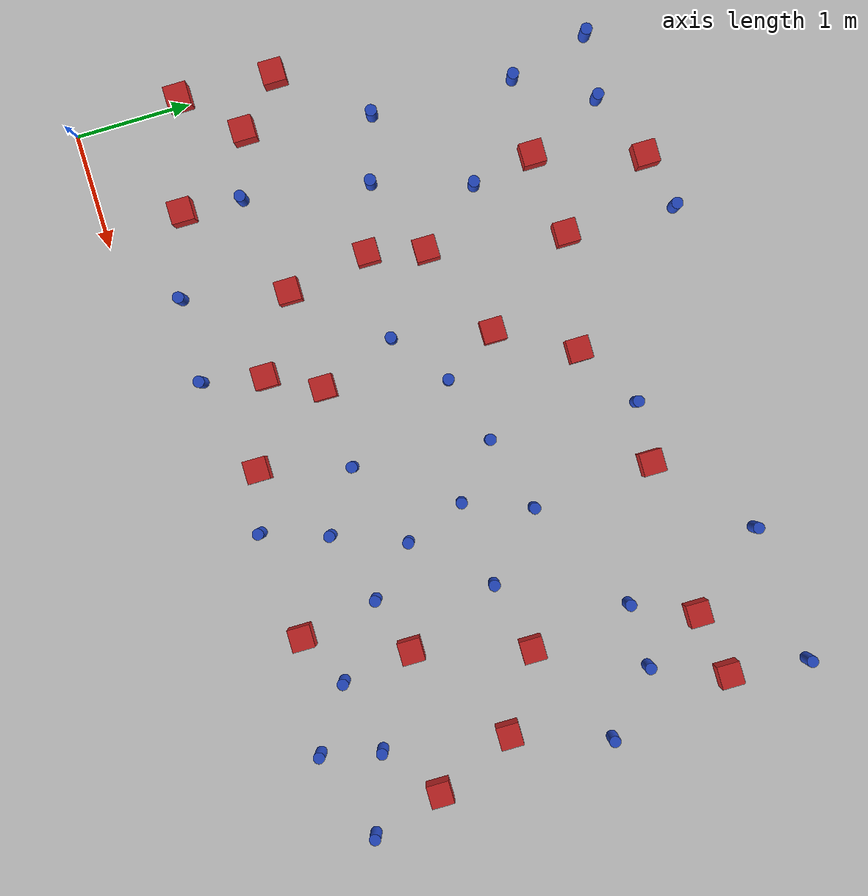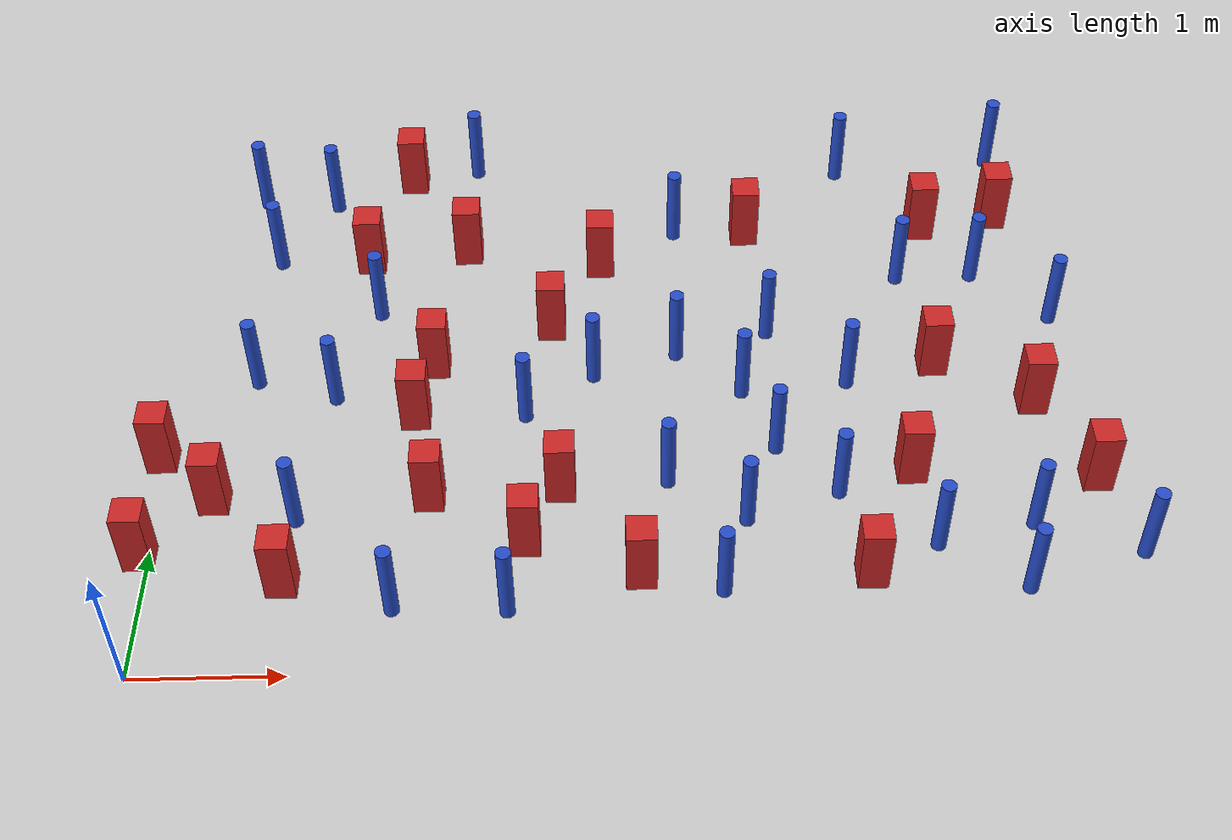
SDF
<sdf version="1.6">
 <world name="default">
  <model name="ground_plane">
   <static>1</static>
   <link name="link">
    <collision name="collision">
     <geometry><plane><normal>0 0 1</normal><size>100 100</size></plane></geometry>
     <surface><friction><ode><mu>100</mu><mu2>50</mu2></ode></friction></surface>
    </collision>
    <visual name="visual">
     <cast_shadows>0</cast_shadows>
     <geometry><plane><normal>0 0 1</normal><size>100 100</size></plane></geometry>
     <material>
      <ambient>1.0 1.0 1.0 1.0</ambient>
      <diffuse>0.8 0.8 0.8 1.0</diffuse>
      <specular>0.01 0.01 0.01 1.000000</specular>
     </material>
    </visual>
   </link>
  </model>
  <model name="pole_obstacle5">
   <static>true</static>
   <pose>0.382674475622 4.43594093725 2.88873142074e-08 -9.90536689683e-09 4.60219948993e-07 -1.20965994957e-07</pose>
   <link name="link">
    <pose>0 0 0.3 0 -0 0</pose>
    <inertial>
     <mass>1</mass>
     <inertia><ixx>0.145833</ixx><ixy>0</ixy><ixz>0</ixz><iyy>0.145833</iyy><iyz>0</iyz><izz>0.125</izz></inertia>
    </inertial>
    <collision name="collision">
     <geometry><cylinder><radius>0.05</radius><length>.6</length></cylinder></geometry>
    </collision>
    <visual name="visual">
     <geometry><cylinder><radius>0.05</radius><length>.6</length></cylinder></geometry>
     <material>
      <script><name>Gazebo/Blue</name><uri>file://media/materials/scripts/gazebo.material</uri></script>
     </material>
    </visual>
   </link>
  </model>
  <model name="square_post_obstacle14">
   <static>true</static>
   <pose>2.61013132298 2.97255172156 8.22691968438e-08 7.2212513382e-06 -7.54495500217e-07 2.29674213826e-05</pose>
   <link name="link">
    <pose>0 0 0.25 0 -0 0</pose>
    <inertial>
     <mass>100</mass>
     <inertia>
      <ixx>0.166667</ixx>
      <ixy>0</ixy>
      <ixz>0</ixz>
      <iyy>0.166667</iyy>
      <iyz>0</iyz>
      <izz>0.166667</izz>
     </inertia>
    </inertial>
    <collision name="collision"><geometry><box><size>.2 .2 .5</size></box></geometry></collision>
    <visual name="visual">
     <geometry><box><size>.2 .2 .5</size></box></geometry>
     <material>
      <script><name>Gazebo/Red</name><uri>file://media/materials/scripts/gazebo.material</uri></script>
     </material>
    </visual>
   </link>
  </model>
  <model name="square_post_obstacle18">
   <static>true</static>
   <pose>5.32142066474 2.54348663365 8.22691968438e-08 7.2212513382e-06 -7.54495500217e-07 2.29674213826e-05</pose>
   <link name="link">
    <pose>0 0 0.25 0 -0 0</pose>
    <inertial>
     <mass>100</mass>
     <inertia>
      <ixx>0.166667</ixx>
      <ixy>0</ixy>
      <ixz>0</ixz>
      <iyy>0.166667</iyy>
      <iyz>0</iyz>
      <izz>0.166667</izz>
     </inertia>
    </inertial>
    <collision name="collision"><geometry><box><size>.2 .2 .5</size></box></geometry></collision>
    <visual name="visual">
     <geometry><box><size>.2 .2 .5</size></box></geometry>
     <material>
      <script><name>Gazebo/Red</name><uri>file://media/materials/scripts/gazebo.material</uri></script>
     </material>
    </visual>
   </link>
  </model>
  <model name="pole_obstacle12">
   <static>true</static>
   <pose>6.0619317782 4.78889199146 2.88873142074e-08 -9.90536690842e-09 4.60219948965e-07 -1.20965994976e-07</pose>
   <link name="link">
    <pose>0 0 0.3 0 -0 0</pose>
    <inertial>
     <mass>1</mass>
     <inertia><ixx>0.145833</ixx><ixy>0</ixy><ixz>0</ixz><iyy>0.145833</iyy><iyz>0</iyz><izz>0.125</izz></inertia>
    </inertial>
    <collision name="collision">
     <geometry><cylinder><radius>0.05</radius><length>.6</length></cylinder></geometry>
    </collision>
    <visual name="visual">
     <geometry><cylinder><radius>0.05</radius><length>.6</length></cylinder></geometry>
     <material>
      <script><name>Gazebo/Blue</name><uri>file://media/materials/scripts/gazebo.material</uri></script>
     </material>
    </visual>
   </link>
  </model>
  <model name="square_post_obstacle27">
   <static>true</static>
   <pose>-0.0255257108904 1.77597224821 8.22691968438e-08 7.2212513382e-06 -7.54495500217e-07 2.29674213826e-05</pose>
   <link name="link">
    <pose>0 0 0.25 0 -0 0</pose>
    <inertial>
     <mass>100</mass>
     <inertia>
      <ixx>0.166667</ixx>
      <ixy>0</ixy>
      <ixz>0</ixz>
      <iyy>0.166667</iyy>
      <iyz>0</iyz>
      <izz>0.166667</izz>
     </inertia>
    </inertial>
    <collision name="collision"><geometry><box><size>.2 .2 .5</size></box></geometry></collision>
    <visual name="visual">
     <geometry><box><size>.2 .2 .5</size></box></geometry>
     <material>
      <script><name>Gazebo/Red</name><uri>file://media/materials/scripts/gazebo.material</uri></script>
     </material>
    </visual>
   </link>
  </model>
  <model name="pole_obstacle19">
   <static>true</static>
   <pose>5.17856146694 3.44423831095 2.88873142074e-08 -9.90536690245e-09 4.6021994898e-07 -1.20965994966e-07</pose>
   <link name="link">
    <pose>0 0 0.3 0 -0 0</pose>
    <inertial>
     <mass>1</mass>
     <inertia><ixx>0.145833</ixx><ixy>0</ixy><ixz>0</ixz><iyy>0.145833</iyy><iyz>0</iyz><izz>0.125</izz></inertia>
    </inertial>
    <collision name="collision">
     <geometry><cylinder><radius>0.05</radius><length>.6</length></cylinder></geometry>
    </collision>
    <visual name="visual">
     <geometry><cylinder><radius>0.05</radius><length>.6</length></cylinder></geometry>
     <material>
      <script><name>Gazebo/Blue</name><uri>file://media/materials/scripts/gazebo.material</uri></script>
     </material>
    </visual>
   </link>
  </model>
  <model name="square_post_obstacle29">
   <static>true</static>
   <pose>5.96964762389 2.1500642033 8.22691968438e-08 7.2212513382e-06 -7.54495500217e-07 2.29674213826e-05</pose>
   <link name="link">
    <pose>0 0 0.25 0 -0 0</pose>
    <inertial>
     <mass>100</mass>
     <inertia>
      <ixx>0.166667</ixx>
      <ixy>0</ixy>
      <ixz>0</ixz>
      <iyy>0.166667</iyy>
      <iyz>0</iyz>
      <izz>0.166667</izz>
     </inertia>
    </inertial>
    <collision name="collision"><geometry><box><size>.2 .2 .5</size></box></geometry></collision>
    <visual name="visual">
     <geometry><box><size>.2 .2 .5</size></box></geometry>
     <material>
      <script><name>Gazebo/Red</name><uri>file://media/materials/scripts/gazebo.material</uri></script>
     </material>
    </visual>
   </link>
  </model>
  <model name="pole_obstacle24">
   <static>true</static>
   <pose>5.68615089917 0.547979014255 2.88873142074e-08 -9.90536689326e-09 4.60219949001e-07 -1.20965994954e-07</pose>
   <link name="link">
    <pose>0 0 0.3 0 -0 0</pose>
    <inertial>
     <mass>1</mass>
     <inertia><ixx>0.145833</ixx><ixy>0</ixy><ixz>0</ixz><iyy>0.145833</iyy><iyz>0</iyz><izz>0.125</izz></inertia>
    </inertial>
    <collision name="collision">
     <geometry><cylinder><radius>0.05</radius><length>.6</length></cylinder></geometry>
    </collision>
    <visual name="visual">
     <geometry><cylinder><radius>0.05</radius><length>.6</length></cylinder></geometry>
     <material>
      <script><name>Gazebo/Blue</name><uri>file://media/materials/scripts/gazebo.material</uri></script>
     </material>
    </visual>
   </link>
  </model>
  <model name="pole_obstacle27">
   <static>true</static>
   <pose>3.53494748664 3.98788788969 2.88873142074e-08 -9.90536690801e-09 4.60219948966e-07 -1.20965994976e-07</pose>
   <link name="link">
    <pose>0 0 0.3 0 -0 0</pose>
    <inertial>
     <mass>1</mass>
     <inertia><ixx>0.145833</ixx><ixy>0</ixy><ixz>0</ixz><iyy>0.145833</iyy><iyz>0</iyz><izz>0.125</izz></inertia>
    </inertial>
    <collision name="collision">
     <geometry><cylinder><radius>0.05</radius><length>.6</length></cylinder></geometry>
    </collision>
    <visual name="visual">
     <geometry><cylinder><radius>0.05</radius><length>.6</length></cylinder></geometry>
     <material>
      <script><name>Gazebo/Blue</name><uri>file://media/materials/scripts/gazebo.material</uri></script>
     </material>
    </visual>
   </link>
  </model>
  <model name="pole_obstacle30">
   <static>true</static>
   <pose>3.39756481299 1.49578005829 2.88873142074e-08 -9.90536689395e-09 4.60219949e-07 -1.20965994953e-07</pose>
   <link name="link">
    <pose>0 0 0.3 0 -0 0</pose>
    <inertial>
     <mass>1</mass>
     <inertia><ixx>0.145833</ixx><ixy>0</ixy><ixz>0</ixz><iyy>0.145833</iyy><iyz>0</iyz><izz>0.125</izz></inertia>
    </inertial>
    <collision name="collision">
     <geometry><cylinder><radius>0.05</radius><length>.6</length></cylinder></geometry>
    </collision>
    <visual name="visual">
     <geometry><cylinder><radius>0.05</radius><length>.6</length></cylinder></geometry>
     <material>
      <script><name>Gazebo/Blue</name><uri>file://media/materials/scripts/gazebo.material</uri></script>
     </material>
    </visual>
   </link>
  </model>
  <model name="pole_obstacle34">
   <static>true</static>
   <pose>1.60834827401 0.483331909976 2.88873142074e-08 -9.90536689788e-09 4.6021994899e-07 -1.2096599496e-07</pose>
   <link name="link">
    <pose>0 0 0.3 0 -0 0</pose>
    <inertial>
     <mass>1</mass>
     <inertia><ixx>0.145833</ixx><ixy>0</ixy><ixz>0</ixz><iyy>0.145833</iyy><iyz>0</iyz><izz>0.125</izz></inertia>
    </inertial>
    <collision name="collision">
     <geometry><cylinder><radius>0.05</radius><length>.6</length></cylinder></geometry>
    </collision>
    <visual name="visual">
     <geometry><cylinder><radius>0.05</radius><length>.6</length></cylinder></geometry>
     <material>
      <script><name>Gazebo/Blue</name><uri>file://media/materials/scripts/gazebo.material</uri></script>
     </material>
    </visual>
   </link>
  </model>
  <model name="square_post_obstacle46">
   <static>true</static>
   <pose>0.896852950103 0.699827318143 8.22691968438e-08 7.2212513382e-06 -7.54495500217e-07 2.29674213826e-05</pose>
   <link name="link">
    <pose>0 0 0.25 0 -0 0</pose>
    <inertial>
     <mass>100</mass>
     <inertia>
      <ixx>0.166667</ixx>
      <ixy>0</ixy>
      <ixz>0</ixz>
      <iyy>0.166667</iyy>
      <iyz>0</iyz>
      <izz>0.166667</izz>
     </inertia>
    </inertial>
    <collision name="collision"><geometry><box><size>.2 .2 .5</size></box></geometry></collision>
    <visual name="visual">
     <geometry><box><size>.2 .2 .5</size></box></geometry>
     <material>
      <script><name>Gazebo/Red</name><uri>file://media/materials/scripts/gazebo.material</uri></script>
     </material>
    </visual>
   </link>
  </model>
  <model name="pole_obstacle46">
   <static>true</static>
   <pose>2.90901373411 2.49089740386 2.88873142074e-08 -9.90536690232e-09 4.6021994898e-07 -1.20965994968e-07</pose>
   <link name="link">
    <pose>0 0 0.3 0 -0 0</pose>
    <inertial>
     <mass>1</mass>
     <inertia><ixx>0.145833</ixx><ixy>0</ixy><ixz>0</ixz><iyy>0.145833</iyy><iyz>0</iyz><izz>0.125</izz></inertia>
    </inertial>
    <collision name="collision">
     <geometry><cylinder><radius>0.05</radius><length>.6</length></cylinder></geometry>
    </collision>
    <visual name="visual">
     <geometry><cylinder><radius>0.05</radius><length>.6</length></cylinder></geometry>
     <material>
      <script><name>Gazebo/Blue</name><uri>file://media/materials/scripts/gazebo.material</uri></script>
     </material>
    </visual>
   </link>
  </model>
  <model name="square_post_obstacle52">
   <static>true</static>
   <pose>0.37356149189 1.39586468227 8.22691968438e-08 7.2212513382e-06 -7.54495500217e-07 2.29674213826e-05</pose>
   <link name="link">
    <pose>0 0 0.25 0 -0 0</pose>
    <inertial>
     <mass>100</mass>
     <inertia>
      <ixx>0.166667</ixx>
      <ixy>0</ixy>
      <ixz>0</ixz>
      <iyy>0.166667</iyy>
      <iyz>0</iyz>
      <izz>0.166667</izz>
     </inertia>
    </inertial>
    <collision name="collision"><geometry><box><size>.2 .2 .5</size></box></geometry></collision>
    <visual name="visual">
     <geometry><box><size>.2 .2 .5</size></box></geometry>
     <material>
      <script><name>Gazebo/Red</name><uri>file://media/materials/scripts/gazebo.material</uri></script>
     </material>
    </visual>
   </link>
  </model>
  <model name="pole_obstacle51">
   <static>true</static>
   <pose>0.538467416489 2.4917963803 2.88873142074e-08 -9.90536689505e-09 4.60219948997e-07 -1.20965994956e-07</pose>
   <link name="link">
    <pose>0 0 0.3 0 -0 0</pose>
    <inertial>
     <mass>1</mass>
     <inertia><ixx>0.145833</ixx><ixy>0</ixy><ixz>0</ixz><iyy>0.145833</iyy><iyz>0</iyz><izz>0.125</izz></inertia>
    </inertial>
    <collision name="collision">
     <geometry><cylinder><radius>0.05</radius><length>.6</length></cylinder></geometry>
    </collision>
    <visual name="visual">
     <geometry><cylinder><radius>0.05</radius><length>.6</length></cylinder></geometry>
     <material>
      <script><name>Gazebo/Blue</name><uri>file://media/materials/scripts/gazebo.material</uri></script>
     </material>
    </visual>
   </link>
  </model>
  <model name="square_post_obstacle60">
   <static>true</static>
   <pose>-0.0507237619743 0.941980563295 8.22691968438e-08 7.2212513382e-06 -7.54495500217e-07 2.29674213826e-05</pose>
   <link name="link">
    <pose>0 0 0.25 0 -0 0</pose>
    <inertial>
     <mass>100</mass>
     <inertia>
      <ixx>0.166667</ixx>
      <ixy>0</ixy>
      <ixz>0</ixz>
      <iyy>0.166667</iyy>
      <iyz>0</iyz>
      <izz>0.166667</izz>
     </inertia>
    </inertial>
    <collision name="collision"><geometry><box><size>.2 .2 .5</size></box></geometry></collision>
    <visual name="visual">
     <geometry><box><size>.2 .2 .5</size></box></geometry>
     <material>
      <script><name>Gazebo/Red</name><uri>file://media/materials/scripts/gazebo.material</uri></script>
     </material>
    </visual>
   </link>
  </model>
  <model name="square_post_obstacle62">
   <static>true</static>
   <pose>4.06875309384 3.96466266357 8.22691968438e-08 7.2212513382e-06 -7.54495500217e-07 2.29674213826e-05</pose>
   <link name="link">
    <pose>0 0 0.25 0 -0 0</pose>
    <inertial>
     <mass>100</mass>
     <inertia>
      <ixx>0.166667</ixx>
      <ixy>0</ixy>
      <ixz>0</ixz>
      <iyy>0.166667</iyy>
      <iyz>0</iyz>
      <izz>0.166667</izz>
     </inertia>
    </inertial>
    <collision name="collision"><geometry><box><size>.2 .2 .5</size></box></geometry></collision>
    <visual name="visual">
     <geometry><box><size>.2 .2 .5</size></box></geometry>
     <material>
      <script><name>Gazebo/Red</name><uri>file://media/materials/scripts/gazebo.material</uri></script>
     </material>
    </visual>
   </link>
  </model>
  <model name="square_post_obstacle71">
   <static>true</static>
   <pose>1.98013108426 3.80431975453 8.22691968438e-08 7.2212513382e-06 -7.54495500217e-07 2.29674213826e-05</pose>
   <link name="link">
    <pose>0 0 0.25 0 -0 0</pose>
    <inertial>
     <mass>100</mass>
     <inertia>
      <ixx>0.166667</ixx>
      <ixy>0</ixy>
      <ixz>0</ixz>
      <iyy>0.166667</iyy>
      <iyz>0</iyz>
      <izz>0.166667</izz>
     </inertia>
    </inertial>
    <collision name="collision"><geometry><box><size>.2 .2 .5</size></box></geometry></collision>
    <visual name="visual">
     <geometry><box><size>.2 .2 .5</size></box></geometry>
     <material>
      <script><name>Gazebo/Red</name><uri>file://media/materials/scripts/gazebo.material</uri></script>
     </material>
    </visual>
   </link>
  </model>
  <model name="pole_obstacle73">
   <static>true</static>
   <pose>3.72306893684 0.576632141042 2.88873142074e-08 -9.90536689285e-09 4.60219949002e-07 -1.20965994953e-07</pose>
   <link name="link">
    <pose>0 0 0.3 0 -0 0</pose>
    <inertial>
     <mass>1</mass>
     <inertia><ixx>0.145833</ixx><ixy>0</ixy><ixz>0</ixz><iyy>0.145833</iyy><iyz>0</iyz><izz>0.125</izz></inertia>
    </inertial>
    <collision name="collision">
     <geometry><cylinder><radius>0.05</radius><length>.6</length></cylinder></geometry>
    </collision>
    <visual name="visual">
     <geometry><cylinder><radius>0.05</radius><length>.6</length></cylinder></geometry>
     <material>
      <script><name>Gazebo/Blue</name><uri>file://media/materials/scripts/gazebo.material</uri></script>
     </material>
    </visual>
   </link>
  </model>
  <model name="pole_obstacle79">
   <static>true</static>
   <pose>5.74018589394 3.45832633295 2.88873142074e-08 -9.90536690245e-09 4.6021994898e-07 -1.20965994966e-07</pose>
   <link name="link">
    <pose>0 0 0.3 0 -0 0</pose>
    <inertial>
     <mass>1</mass>
     <inertia><ixx>0.145833</ixx><ixy>0</ixy><ixz>0</ixz><iyy>0.145833</iyy><iyz>0</iyz><izz>0.125</izz></inertia>
    </inertial>
    <collision name="collision">
     <geometry><cylinder><radius>0.05</radius><length>.6</length></cylinder></geometry>
    </collision>
    <visual name="visual">
     <geometry><cylinder><radius>0.05</radius><length>.6</length></cylinder></geometry>
     <material>
      <script><name>Gazebo/Blue</name><uri>file://media/materials/scripts/gazebo.material</uri></script>
     </material>
    </visual>
   </link>
  </model>
  <model name="square_post_obstacle87">
   <static>true</static>
   <pose>5.04496275468 1.54257929177 8.22691968438e-08 7.2212513382e-06 -7.54495500217e-07 2.29674213826e-05</pose>
   <link name="link">
    <pose>0 0 0.25 0 -0 0</pose>
    <inertial>
     <mass>100</mass>
     <inertia>
      <ixx>0.166667</ixx>
      <ixy>0</ixy>
      <ixz>0</ixz>
      <iyy>0.166667</iyy>
      <iyz>0</iyz>
      <izz>0.166667</izz>
     </inertia>
    </inertial>
    <collision name="collision"><geometry><box><size>.2 .2 .5</size></box></geometry></collision>
    <visual name="visual">
     <geometry><box><size>.2 .2 .5</size></box></geometry>
     <material>
      <script><name>Gazebo/Red</name><uri>file://media/materials/scripts/gazebo.material</uri></script>
     </material>
    </visual>
   </link>
  </model>
  <model name="square_post_obstacle91">
   <static>true</static>
   <pose>3.19738153457 0.706337699116 8.22691968438e-08 7.2212513382e-06 -7.54495500217e-07 2.29674213826e-05</pose>
   <link name="link">
    <pose>0 0 0.25 0 -0 0</pose>
    <inertial>
     <mass>100</mass>
     <inertia>
      <ixx>0.166667</ixx>
      <ixy>0</ixy>
      <ixz>0</ixz>
      <iyy>0.166667</iyy>
      <iyz>0</iyz>
      <izz>0.166667</izz>
     </inertia>
    </inertial>
    <collision name="collision"><geometry><box><size>.2 .2 .5</size></box></geometry></collision>
    <visual name="visual">
     <geometry><box><size>.2 .2 .5</size></box></geometry>
     <material>
      <script><name>Gazebo/Red</name><uri>file://media/materials/scripts/gazebo.material</uri></script>
     </material>
    </visual>
   </link>
  </model>
  <model name="square_post_obstacle94">
   <static>true</static>
   <pose>1.25440199853 3.71421109143 8.22691968438e-08 7.2212513382e-06 -7.54495500217e-07 2.29674213826e-05</pose>
   <link name="link">
    <pose>0 0 0.25 0 -0 0</pose>
    <inertial>
     <mass>100</mass>
     <inertia>
      <ixx>0.166667</ixx>
      <ixy>0</ixy>
      <ixz>0</ixz>
      <iyy>0.166667</iyy>
      <iyz>0</iyz>
      <izz>0.166667</izz>
     </inertia>
    </inertial>
    <collision name="collision"><geometry><box><size>.2 .2 .5</size></box></geometry></collision>
    <visual name="visual">
     <geometry><box><size>.2 .2 .5</size></box></geometry>
     <material>
      <script><name>Gazebo/Red</name><uri>file://media/materials/scripts/gazebo.material</uri></script>
     </material>
    </visual>
   </link>
  </model>
  <model name="pole_obstacle107">
   <static>true</static>
   <pose>1.35894943077 3.16353920913 2.88873142074e-08 -9.90536689791e-09 4.6021994899e-07 -1.20965994959e-07</pose>
   <link name="link">
    <pose>0 0 0.3 0 -0 0</pose>
    <inertial>
     <mass>1</mass>
     <inertia><ixx>0.145833</ixx><ixy>0</ixy><ixz>0</ixz><iyy>0.145833</iyy><iyz>0</iyz><izz>0.125</izz></inertia>
    </inertial>
    <collision name="collision">
     <geometry><cylinder><radius>0.05</radius><length>.6</length></cylinder></geometry>
    </collision>
    <visual name="visual">
     <geometry><cylinder><radius>0.05</radius><length>.6</length></cylinder></geometry>
     <material>
      <script><name>Gazebo/Blue</name><uri>file://media/materials/scripts/gazebo.material</uri></script>
     </material>
    </visual>
   </link>
  </model>
  <model name="square_post_obstacle100">
   <static>true</static>
   <pose>5.41986902795 3.98958610892 8.22691968438e-08 7.2212513382e-06 -7.54495500217e-07 2.29674213826e-05</pose>
   <link name="link">
    <pose>0 0 0.25 0 -0 0</pose>
    <inertial>
     <mass>100</mass>
     <inertia>
      <ixx>0.166667</ixx>
      <ixy>0</ixy>
      <ixz>0</ixz>
      <iyy>0.166667</iyy>
      <iyz>0</iyz>
      <izz>0.166667</izz>
     </inertia>
    </inertial>
    <collision name="collision"><geometry><box><size>.2 .2 .5</size></box></geometry></collision>
    <visual name="visual">
     <geometry><box><size>.2 .2 .5</size></box></geometry>
     <material>
      <script><name>Gazebo/Red</name><uri>file://media/materials/scripts/gazebo.material</uri></script>
     </material>
    </visual>
   </link>
  </model>
  <model name="pole_obstacle115">
   <static>true</static>
   <pose>0.927162185354 1.22304639306 2.88873142074e-08 -9.90536689855e-09 4.60219948989e-07 -1.20965994962e-07</pose>
   <link name="link">
    <pose>0 0 0.3 0 -0 0</pose>
    <inertial>
     <mass>1</mass>
     <inertia><ixx>0.145833</ixx><ixy>0</ixy><ixz>0</ixz><iyy>0.145833</iyy><iyz>0</iyz><izz>0.125</izz></inertia>
    </inertial>
    <collision name="collision">
     <geometry><cylinder><radius>0.05</radius><length>.6</length></cylinder></geometry>
    </collision>
    <visual name="visual">
     <geometry><cylinder><radius>0.05</radius><length>.6</length></cylinder></geometry>
     <material>
      <script><name>Gazebo/Blue</name><uri>file://media/materials/scripts/gazebo.material</uri></script>
     </material>
    </visual>
   </link>
  </model>
  <model name="pole_obstacle118">
   <static>true</static>
   <pose>1.1014590591 2.32056846947 2.88873142074e-08 -9.90536689791e-09 4.6021994899e-07 -1.20965994959e-07</pose>
   <link name="link">
    <pose>0 0 0.3 0 -0 0</pose>
    <inertial>
     <mass>1</mass>
     <inertia><ixx>0.145833</ixx><ixy>0</ixy><ixz>0</ixz><iyy>0.145833</iyy><iyz>0</iyz><izz>0.125</izz></inertia>
    </inertial>
    <collision name="collision">
     <geometry><cylinder><radius>0.05</radius><length>.6</length></cylinder></geometry>
    </collision>
    <visual name="visual">
     <geometry><cylinder><radius>0.05</radius><length>.6</length></cylinder></geometry>
     <material>
      <script><name>Gazebo/Blue</name><uri>file://media/materials/scripts/gazebo.material</uri></script>
     </material>
    </visual>
   </link>
  </model>
  <model name="pole_obstacle120">
   <static>true</static>
   <pose>4.54256286126 1.37131917725 2.88873142074e-08 -9.90536689445e-09 4.60219948999e-07 -1.20965994956e-07</pose>
   <link name="link">
    <pose>0 0 0.3 0 -0 0</pose>
    <inertial>
     <mass>1</mass>
     <inertia><ixx>0.145833</ixx><ixy>0</ixy><ixz>0</ixz><iyy>0.145833</iyy><iyz>0</iyz><izz>0.125</izz></inertia>
    </inertial>
    <collision name="collision">
     <geometry><cylinder><radius>0.05</radius><length>.6</length></cylinder></geometry>
    </collision>
    <visual name="visual">
     <geometry><cylinder><radius>0.05</radius><length>.6</length></cylinder></geometry>
     <material>
      <script><name>Gazebo/Blue</name><uri>file://media/materials/scripts/gazebo.material</uri></script>
     </material>
    </visual>
   </link>
  </model>
  <model name="pole_obstacle123">
   <static>true</static>
   <pose>4.14812218759 1.77840719696 2.88873142074e-08 -9.90536689445e-09 4.60219948999e-07 -1.20965994956e-07</pose>
   <link name="link">
    <pose>0 0 0.3 0 -0 0</pose>
    <inertial>
     <mass>1</mass>
     <inertia><ixx>0.145833</ixx><ixy>0</ixy><ixz>0</ixz><iyy>0.145833</iyy><iyz>0</iyz><izz>0.125</izz></inertia>
    </inertial>
    <collision name="collision">
     <geometry><cylinder><radius>0.05</radius><length>.6</length></cylinder></geometry>
    </collision>
    <visual name="visual">
     <geometry><cylinder><radius>0.05</radius><length>.6</length></cylinder></geometry>
     <material>
      <script><name>Gazebo/Blue</name><uri>file://media/materials/scripts/gazebo.material</uri></script>
     </material>
    </visual>
   </link>
  </model>
  <model name="pole_obstacle124">
   <static>true</static>
   <pose>2.01302240176 4.76584626278 2.88873142074e-08 -9.90536689932e-09 4.60219948987e-07 -1.20965994962e-07</pose>
   <link name="link">
    <pose>0 0 0.3 0 -0 0</pose>
    <inertial>
     <mass>1</mass>
     <inertia><ixx>0.145833</ixx><ixy>0</ixy><ixz>0</ixz><iyy>0.145833</iyy><iyz>0</iyz><izz>0.125</izz></inertia>
    </inertial>
    <collision name="collision">
     <geometry><cylinder><radius>0.05</radius><length>.6</length></cylinder></geometry>
    </collision>
    <visual name="visual">
     <geometry><cylinder><radius>0.05</radius><length>.6</length></cylinder></geometry>
     <material>
      <script><name>Gazebo/Blue</name><uri>file://media/materials/scripts/gazebo.material</uri></script>
     </material>
    </visual>
   </link>
  </model>
  <model name="pole_obstacle125">
   <static>true</static>
   <pose>6.24891173623 2.99461866241 2.88873142074e-08 -9.90536690245e-09 4.6021994898e-07 -1.20965994966e-07</pose>
   <link name="link">
    <pose>0 0 0.3 0 -0 0</pose>
    <inertial>
     <mass>1</mass>
     <inertia><ixx>0.145833</ixx><ixy>0</ixy><ixz>0</ixz><iyy>0.145833</iyy><iyz>0</iyz><izz>0.125</izz></inertia>
    </inertial>
    <collision name="collision">
     <geometry><cylinder><radius>0.05</radius><length>.6</length></cylinder></geometry>
    </collision>
    <visual name="visual">
     <geometry><cylinder><radius>0.05</radius><length>.6</length></cylinder></geometry>
     <material>
      <script><name>Gazebo/Blue</name><uri>file://media/materials/scripts/gazebo.material</uri></script>
     </material>
    </visual>
   </link>
  </model>
  <model name="pole_obstacle136">
   <static>true</static>
   <pose>4.84925087403 4.66553515354 2.88873142074e-08 -9.90536690842e-09 4.60219948965e-07 -1.20965994976e-07</pose>
   <link name="link">
    <pose>0 0 0.3 0 -0 0</pose>
    <inertial>
     <mass>1</mass>
     <inertia><ixx>0.145833</ixx><ixy>0</ixy><ixz>0</ixz><iyy>0.145833</iyy><iyz>0</iyz><izz>0.125</izz></inertia>
    </inertial>
    <collision name="collision">
     <geometry><cylinder><radius>0.05</radius><length>.6</length></cylinder></geometry>
    </collision>
    <visual name="visual">
     <geometry><cylinder><radius>0.05</radius><length>.6</length></cylinder></geometry>
     <material>
      <script><name>Gazebo/Blue</name><uri>file://media/materials/scripts/gazebo.material</uri></script>
     </material>
    </visual>
   </link>
  </model>
  <model name="pole_obstacle139">
   <static>true</static>
   <pose>3.94839999957 2.3071250398 2.88873142074e-08 -9.90536690232e-09 4.6021994898e-07 -1.20965994968e-07</pose>
   <link name="link">
    <pose>0 0 0.3 0 -0 0</pose>
    <inertial>
     <mass>1</mass>
     <inertia><ixx>0.145833</ixx><ixy>0</ixy><ixz>0</ixz><iyy>0.145833</iyy><iyz>0</iyz><izz>0.125</izz></inertia>
    </inertial>
    <collision name="collision">
     <geometry><cylinder><radius>0.05</radius><length>.6</length></cylinder></geometry>
    </collision>
    <visual name="visual">
     <geometry><cylinder><radius>0.05</radius><length>.6</length></cylinder></geometry>
     <material>
      <script><name>Gazebo/Blue</name><uri>file://media/materials/scripts/gazebo.material</uri></script>
     </material>
    </visual>
   </link>
  </model>
  <model name="pole_obstacle141">
   <static>true</static>
   <pose>3.90942512859 1.15092189156 2.88873142074e-08 -9.90536689395e-09 4.60219949e-07 -1.20965994953e-07</pose>
   <link name="link">
    <pose>0 0 0.3 0 -0 0</pose>
    <inertial>
     <mass>1</mass>
     <inertia><ixx>0.145833</ixx><ixy>0</ixy><ixz>0</ixz><iyy>0.145833</iyy><iyz>0</iyz><izz>0.125</izz></inertia>
    </inertial>
    <collision name="collision">
     <geometry><cylinder><radius>0.05</radius><length>.6</length></cylinder></geometry>
    </collision>
    <visual name="visual">
     <geometry><cylinder><radius>0.05</radius><length>.6</length></cylinder></geometry>
     <material>
      <script><name>Gazebo/Blue</name><uri>file://media/materials/scripts/gazebo.material</uri></script>
     </material>
    </visual>
   </link>
  </model>
  <model name="square_post_obstacle126">
   <static>true</static>
   <pose>2.67675898367 1.44273884122 8.22691968438e-08 7.2212513382e-06 -7.54495500217e-07 2.29674213826e-05</pose>
   <link name="link">
    <pose>0 0 0.25 0 -0 0</pose>
    <inertial>
     <mass>100</mass>
     <inertia>
      <ixx>0.166667</ixx>
      <ixy>0</ixy>
      <ixz>0</ixz>
      <iyy>0.166667</iyy>
      <iyz>0</iyz>
      <izz>0.166667</izz>
     </inertia>
    </inertial>
    <collision name="collision"><geometry><box><size>.2 .2 .5</size></box></geometry></collision>
    <visual name="visual">
     <geometry><box><size>.2 .2 .5</size></box></geometry>
     <material>
      <script><name>Gazebo/Red</name><uri>file://media/materials/scripts/gazebo.material</uri></script>
     </material>
    </visual>
   </link>
  </model>
  <model name="square_post_obstacle129">
   <static>true</static>
   <pose>2.97025087968 3.63249098519 8.22691968438e-08 7.2212513382e-06 -7.54495500217e-07 2.29674213826e-05</pose>
   <link name="link">
    <pose>0 0 0.25 0 -0 0</pose>
    <inertial>
     <mass>100</mass>
     <inertia>
      <ixx>0.166667</ixx>
      <ixy>0</ixy>
      <ixz>0</ixz>
      <iyy>0.166667</iyy>
      <iyz>0</iyz>
      <izz>0.166667</izz>
     </inertia>
    </inertial>
    <collision name="collision"><geometry><box><size>.2 .2 .5</size></box></geometry></collision>
    <visual name="visual">
     <geometry><box><size>.2 .2 .5</size></box></geometry>
     <material>
      <script><name>Gazebo/Red</name><uri>file://media/materials/scripts/gazebo.material</uri></script>
     </material>
    </visual>
   </link>
  </model>
  <model name="square_post_obstacle142">
   <static>true</static>
   <pose>2.44755816439 0.990581160897 8.22691968438e-08 7.2212513382e-06 -7.54495500217e-07 2.29674213826e-05</pose>
   <link name="link">
    <pose>0 0 0.25 0 -0 0</pose>
    <inertial>
     <mass>100</mass>
     <inertia>
      <ixx>0.166667</ixx>
      <ixy>0</ixy>
      <ixz>0</ixz>
      <iyy>0.166667</iyy>
      <iyz>0</iyz>
      <izz>0.166667</izz>
     </inertia>
    </inertial>
    <collision name="collision"><geometry><box><size>.2 .2 .5</size></box></geometry></collision>
    <visual name="visual">
     <geometry><box><size>.2 .2 .5</size></box></geometry>
     <material>
      <script><name>Gazebo/Red</name><uri>file://media/materials/scripts/gazebo.material</uri></script>
     </material>
    </visual>
   </link>
  </model>
  <model name="pole_obstacle155">
   <static>true</static>
   <pose>3.50039729582 2.69165817195 2.88873142074e-08 -9.90536690232e-09 4.6021994898e-07 -1.20965994968e-07</pose>
   <link name="link">
    <pose>0 0 0.3 0 -0 0</pose>
    <inertial>
     <mass>1</mass>
     <inertia><ixx>0.145833</ixx><ixy>0</ixy><ixz>0</ixz><iyy>0.145833</iyy><iyz>0</iyz><izz>0.125</izz></inertia>
    </inertial>
    <collision name="collision">
     <geometry><cylinder><radius>0.05</radius><length>.6</length></cylinder></geometry>
    </collision>
    <visual name="visual">
     <geometry><cylinder><radius>0.05</radius><length>.6</length></cylinder></geometry>
     <material>
      <script><name>Gazebo/Blue</name><uri>file://media/materials/scripts/gazebo.material</uri></script>
     </material>
    </visual>
   </link>
  </model>
  <model name="square_post_obstacle148">
   <static>true</static>
   <pose>5.99172679484 4.09877531514 8.22691968438e-08 7.22125133819e-06 -7.54495500217e-07 2.29674213826e-05</pose>
   <link name="link">
    <pose>0 0 0.25 0 -0 0</pose>
    <inertial>
     <mass>100</mass>
     <inertia>
      <ixx>0.166667</ixx>
      <ixy>0</ixy>
      <ixz>0</ixz>
      <iyy>0.166667</iyy>
      <iyz>0</iyz>
      <izz>0.166667</izz>
     </inertia>
    </inertial>
    <collision name="collision"><geometry><box><size>.2 .2 .5</size></box></geometry></collision>
    <visual name="visual">
     <geometry><box><size>.2 .2 .5</size></box></geometry>
     <material>
      <script><name>Gazebo/Red</name><uri>file://media/materials/scripts/gazebo.material</uri></script>
     </material>
    </visual>
   </link>
  </model>
  <model name="pole_obstacle158">
   <static>true</static>
   <pose>5.8024738005 1.0689415312 2.88873142074e-08 -9.90536689445e-09 4.60219948999e-07 -1.20965994956e-07</pose>
   <link name="link">
    <pose>0 0 0.3 0 -0 0</pose>
    <inertial>
     <mass>1</mass>
     <inertia><ixx>0.145833</ixx><ixy>0</ixy><ixz>0</ixz><iyy>0.145833</iyy><iyz>0</iyz><izz>0.125</izz></inertia>
    </inertial>
    <collision name="collision">
     <geometry><cylinder><radius>0.05</radius><length>.6</length></cylinder></geometry>
    </collision>
    <visual name="visual">
     <geometry><cylinder><radius>0.05</radius><length>.6</length></cylinder></geometry>
     <material>
      <script><name>Gazebo/Blue</name><uri>file://media/materials/scripts/gazebo.material</uri></script>
     </material>
    </visual>
   </link>
  </model>
  <model name="pole_obstacle174">
   <static>true</static>
   <pose>4.16299290673 2.89209559394 2.88873142074e-08 -9.90536690245e-09 4.6021994898e-07 -1.20965994966e-07</pose>
   <link name="link">
    <pose>0 0 0.3 0 -0 0</pose>
    <inertial>
     <mass>1</mass>
     <inertia><ixx>0.145833</ixx><ixy>0</ixy><ixz>0</ixz><iyy>0.145833</iyy><iyz>0</iyz><izz>0.125</izz></inertia>
    </inertial>
    <collision name="collision">
     <geometry><cylinder><radius>0.05</radius><length>.6</length></cylinder></geometry>
    </collision>
    <visual name="visual">
     <geometry><cylinder><radius>0.05</radius><length>.6</length></cylinder></geometry>
     <material>
      <script><name>Gazebo/Blue</name><uri>file://media/materials/scripts/gazebo.material</uri></script>
     </material>
    </visual>
   </link>
  </model>
  <model name="square_post_obstacle165">
   <static>true</static>
   <pose>1.52466063917 4.64164548923 8.22691968438e-08 7.2212513382e-06 -7.54495500217e-07 2.29674213826e-05</pose>
   <link name="link">
    <pose>0 0 0.25 0 -0 0</pose>
    <inertial>
     <mass>100</mass>
     <inertia>
      <ixx>0.166667</ixx>
      <ixy>0</ixy>
      <ixz>0</ixz>
      <iyy>0.166667</iyy>
      <iyz>0</iyz>
      <izz>0.166667</izz>
     </inertia>
    </inertial>
    <collision name="collision"><geometry><box><size>.2 .2 .5</size></box></geometry></collision>
    <visual name="visual">
     <geometry><box><size>.2 .2 .5</size></box></geometry>
     <material>
      <script><name>Gazebo/Red</name><uri>file://media/materials/scripts/gazebo.material</uri></script>
     </material>
    </visual>
   </link>
  </model>
  <model name="square_post_obstacle169">
   <static>true</static>
   <pose>1.80371046937 1.38524685715 8.22691968438e-08 7.2212513382e-06 -7.54495500217e-07 2.29674213826e-05</pose>
   <link name="link">
    <pose>0 0 0.25 0 -0 0</pose>
    <inertial>
     <mass>100</mass>
     <inertia>
      <ixx>0.166667</ixx>
      <ixy>0</ixy>
      <ixz>0</ixz>
      <iyy>0.166667</iyy>
      <iyz>0</iyz>
      <izz>0.166667</izz>
     </inertia>
    </inertial>
    <collision name="collision"><geometry><box><size>.2 .2 .5</size></box></geometry></collision>
    <visual name="visual">
     <geometry><box><size>.2 .2 .5</size></box></geometry>
     <material>
      <script><name>Gazebo/Red</name><uri>file://media/materials/scripts/gazebo.material</uri></script>
     </material>
    </visual>
   </link>
  </model>
  <model name="square_post_obstacle181">
   <static>true</static>
   <pose>6.28211842616 1.44327906804 8.22691968438e-08 7.2212513382e-06 -7.54495500217e-07 2.29674213826e-05</pose>
   <link name="link">
    <pose>0 0 0.25 0 -0 0</pose>
    <inertial>
     <mass>100</mass>
     <inertia>
      <ixx>0.166667</ixx>
      <ixy>0</ixy>
      <ixz>0</ixz>
      <iyy>0.166667</iyy>
      <iyz>0</iyz>
      <izz>0.166667</izz>
     </inertia>
    </inertial>
    <collision name="collision"><geometry><box><size>.2 .2 .5</size></box></geometry></collision>
    <visual name="visual">
     <geometry><box><size>.2 .2 .5</size></box></geometry>
     <material>
      <script><name>Gazebo/Red</name><uri>file://media/materials/scripts/gazebo.material</uri></script>
     </material>
    </visual>
   </link>
  </model>
  <model name="square_post_obstacle200">
   <static>true</static>
   <pose>1.78562580619 2.61424785775 8.22691968438e-08 7.2212513382e-06 -7.54495500217e-07 2.29674213826e-05</pose>
   <link name="link">
    <pose>0 0 0.25 0 -0 0</pose>
    <inertial>
     <mass>100</mass>
     <inertia>
      <ixx>0.166667</ixx>
      <ixy>0</ixy>
      <ixz>0</ixz>
      <iyy>0.166667</iyy>
      <iyz>0</iyz>
      <izz>0.166667</izz>
     </inertia>
    </inertial>
    <collision name="collision"><geometry><box><size>.2 .2 .5</size></box></geometry></collision>
    <visual name="visual">
     <geometry><box><size>.2 .2 .5</size></box></geometry>
     <material>
      <script><name>Gazebo/Red</name><uri>file://media/materials/scripts/gazebo.material</uri></script>
     </material>
    </visual>
   </link>
  </model>
  <model name="square_post_obstacle203">
   <static>true</static>
   <pose>1.67174443985 2.12202885586 8.22691968438e-08 7.2212513382e-06 -7.54495500217e-07 2.29674213826e-05</pose>
   <link name="link">
    <pose>0 0 0.25 0 -0 0</pose>
    <inertial>
     <mass>100</mass>
     <inertia>
      <ixx>0.166667</ixx>
      <ixy>0</ixy>
      <ixz>0</ixz>
      <iyy>0.166667</iyy>
      <iyz>0</iyz>
      <izz>0.166667</izz>
     </inertia>
    </inertial>
    <collision name="collision"><geometry><box><size>.2 .2 .5</size></box></geometry></collision>
    <visual name="visual">
     <geometry><box><size>.2 .2 .5</size></box></geometry>
     <material>
      <script><name>Gazebo/Red</name><uri>file://media/materials/scripts/gazebo.material</uri></script>
     </material>
    </visual>
   </link>
  </model>
  <model name="square_post_obstacle205">
   <static>true</static>
   <pose>4.67802291522 0.674894621911 8.22691968438e-08 7.2212513382e-06 -7.54495500217e-07 2.29674213826e-05</pose>
   <link name="link">
    <pose>0 0 0.25 0 -0 0</pose>
    <inertial>
     <mass>100</mass>
     <inertia>
      <ixx>0.166667</ixx>
      <ixy>0</ixy>
      <ixz>0</ixz>
      <iyy>0.166667</iyy>
      <iyz>0</iyz>
      <izz>0.166667</izz>
     </inertia>
    </inertial>
    <collision name="collision"><geometry><box><size>.2 .2 .5</size></box></geometry></collision>
    <visual name="visual">
     <geometry><box><size>.2 .2 .5</size></box></geometry>
     <material>
      <script><name>Gazebo/Red</name><uri>file://media/materials/scripts/gazebo.material</uri></script>
     </material>
    </visual>
   </link>
  </model>
  <model name="pole_obstacle191">
   <static>true</static>
   <pose>2.43248943356 2.11945145093 2.88873142074e-08 -9.90536690232e-09 4.6021994898e-07 -1.20965994968e-07</pose>
   <link name="link">
    <pose>0 0 0.3 0 -0 0</pose>
    <inertial>
     <mass>1</mass>
     <inertia><ixx>0.145833</ixx><ixy>0</ixy><ixz>0</ixz><iyy>0.145833</iyy><iyz>0</iyz><izz>0.125</izz></inertia>
    </inertial>
    <collision name="collision">
     <geometry><cylinder><radius>0.05</radius><length>.6</length></cylinder></geometry>
    </collision>
    <visual name="visual">
     <geometry><cylinder><radius>0.05</radius><length>.6</length></cylinder></geometry>
     <material>
      <script><name>Gazebo/Blue</name><uri>file://media/materials/scripts/gazebo.material</uri></script>
     </material>
    </visual>
   </link>
  </model>
  <model name="pole_obstacle192">
   <static>true</static>
   <pose>0.571548482359 3.7348479521 2.88873142074e-08 -9.90536689636e-09 4.60219948994e-07 -1.20965994958e-07</pose>
   <link name="link">
    <pose>0 0 0.3 0 -0 0</pose>
    <inertial>
     <mass>1</mass>
     <inertia><ixx>0.145833</ixx><ixy>0</ixy><ixz>0</ixz><iyy>0.145833</iyy><iyz>0</iyz><izz>0.125</izz></inertia>
    </inertial>
    <collision name="collision">
     <geometry><cylinder><radius>0.05</radius><length>.6</length></cylinder></geometry>
    </collision>
    <visual name="visual">
     <geometry><cylinder><radius>0.05</radius><length>.6</length></cylinder></geometry>
     <material>
      <script><name>Gazebo/Blue</name><uri>file://media/materials/scripts/gazebo.material</uri></script>
     </material>
    </visual>
   </link>
  </model>
  <model name="pole_obstacle193">
   <static>true</static>
   <pose>4.6962779857 2.38097075639 2.88873142074e-08 -9.90536690245e-09 4.6021994898e-07 -1.20965994966e-07</pose>
   <link name="link">
    <pose>0 0 0.3 0 -0 0</pose>
    <inertial>
     <mass>1</mass>
     <inertia><ixx>0.145833</ixx><ixy>0</ixy><ixz>0</ixz><iyy>0.145833</iyy><iyz>0</iyz><izz>0.125</izz></inertia>
    </inertial>
    <collision name="collision">
     <geometry><cylinder><radius>0.05</radius><length>.6</length></cylinder></geometry>
    </collision>
    <visual name="visual">
     <geometry><cylinder><radius>0.05</radius><length>.6</length></cylinder></geometry>
     <material>
      <script><name>Gazebo/Blue</name><uri>file://media/materials/scripts/gazebo.material</uri></script>
     </material>
    </visual>
   </link>
  </model>
  <model name="pole_obstacle197">
   <static>true</static>
   <pose>0.938127888722 4.37913430405 2.88873142074e-08 -9.90536689661e-09 4.60219948993e-07 -1.20965994957e-07</pose>
   <link name="link">
    <pose>0 0 0.3 0 -0 0</pose>
    <inertial>
     <mass>1</mass>
     <inertia><ixx>0.145833</ixx><ixy>0</ixy><ixz>0</ixz><iyy>0.145833</iyy><iyz>0</iyz><izz>0.125</izz></inertia>
    </inertial>
    <collision name="collision">
     <geometry><cylinder><radius>0.05</radius><length>.6</length></cylinder></geometry>
    </collision>
    <visual name="visual">
     <geometry><cylinder><radius>0.05</radius><length>.6</length></cylinder></geometry>
     <material>
      <script><name>Gazebo/Blue</name><uri>file://media/materials/scripts/gazebo.material</uri></script>
     </material>
    </visual>
   </link>
  </model>
  <model name="pole_obstacle203">
   <static>true</static>
   <pose>2.34188022287 0.452890620687 2.88873142074e-08 -9.90536689151e-09 4.60219949006e-07 -1.20965994951e-07</pose>
   <link name="link">
    <pose>0 0 0.3 0 -0 0</pose>
    <inertial>
     <mass>1</mass>
     <inertia><ixx>0.145833</ixx><ixy>0</ixy><ixz>0</ixz><iyy>0.145833</iyy><iyz>0</iyz><izz>0.125</izz></inertia>
    </inertial>
    <collision name="collision">
     <geometry><cylinder><radius>0.05</radius><length>.6</length></cylinder></geometry>
    </collision>
    <visual name="visual">
     <geometry><cylinder><radius>0.05</radius><length>.6</length></cylinder></geometry>
     <material>
      <script><name>Gazebo/Blue</name><uri>file://media/materials/scripts/gazebo.material</uri></script>
     </material>
    </visual>
   </link>
  </model>
  <model name="pole_obstacle210">
   <static>true</static>
   <pose>5.14500980552 0.913642818123 2.88873142074e-08 -9.90536689837e-09 4.60219948989e-07 -1.2096599496e-07</pose>
   <link name="link">
    <pose>0 0 0.3 0 -0 0</pose>
    <inertial>
     <mass>1</mass>
     <inertia><ixx>0.145833</ixx><ixy>0</ixy><ixz>0</ixz><iyy>0.145833</iyy><iyz>0</iyz><izz>0.125</izz></inertia>
    </inertial>
    <collision name="collision">
     <geometry><cylinder><radius>0.05</radius><length>.6</length></cylinder></geometry>
    </collision>
    <visual name="visual">
     <geometry><cylinder><radius>0.05</radius><length>.6</length></cylinder></geometry>
     <material>
      <script><name>Gazebo/Blue</name><uri>file://media/materials/scripts/gazebo.material</uri></script>
     </material>
    </visual>
   </link>
  </model>
  <model name="pole_obstacle214">
   <static>true</static>
   <pose>6.48234616973 0.811302522569 2.88873142074e-08 -9.90536689837e-09 4.60219948989e-07 -1.2096599496e-07</pose>
   <link name="link">
    <pose>0 0 0.3 0 -0 0</pose>
    <inertial>
     <mass>1</mass>
     <inertia><ixx>0.145833</ixx><ixy>0</ixy><ixz>0</ixz><iyy>0.145833</iyy><iyz>0</iyz><izz>0.125</izz></inertia>
    </inertial>
    <collision name="collision">
     <geometry><cylinder><radius>0.05</radius><length>.6</length></cylinder></geometry>
    </collision>
    <visual name="visual">
     <geometry><cylinder><radius>0.05</radius><length>.6</length></cylinder></geometry>
     <material>
      <script><name>Gazebo/Blue</name><uri>file://media/materials/scripts/gazebo.material</uri></script>
     </material>
    </visual>
   </link>
  </model>
 </world>
</sdf>
